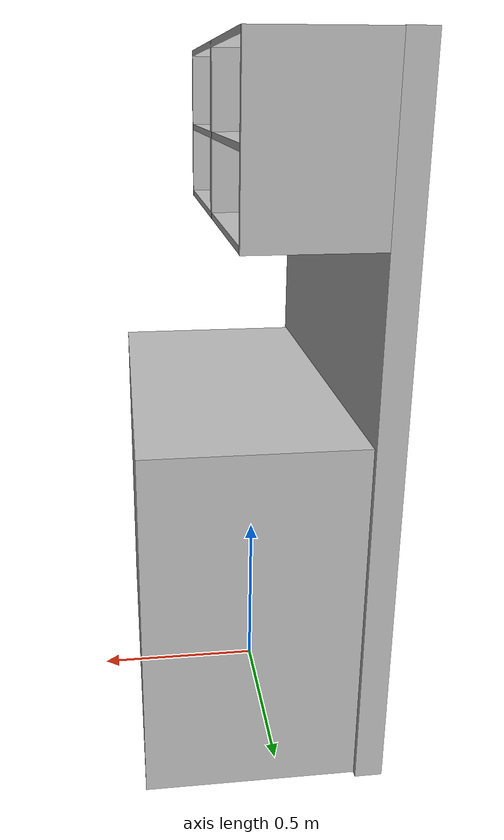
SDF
<?xml version="1.0"?>
<sdf version="1.6">
  <model name="rgo2017/kitchen_sink">
    <link name="1_link">
      <collision name="1_col">
        <geometry>
          <box>
            <size>0.6 1.169 1.02</size>
          </box>
        </geometry>
      </collision>
      <visual name="1_vis">
        <geometry>
          <box>
            <size>0.6 1.169 1.02</size>
          </box>
        </geometry>
        <material>
          <ambient>0.75 0.75 0.75 1</ambient>
        </material>
      </visual>
      <pose>0.083 0 0.51 0 0 0</pose>
    </link>
    <link name="2_link">
      <collision name="2_col">
        <geometry>
          <box>
            <size>0.078 1.205 2.002</size>
          </box>
        </geometry>
      </collision>
      <visual name="2_vis">
        <geometry>
          <box>
            <size>0.078 1.205 2.002</size>
          </box>
        </geometry>
        <material>
          <ambient>0.75 0.75 0.75 1</ambient>
        </material>
      </visual>
      <pose>-0.256 0 1.001 0 0 0</pose>
    </link>
    <link name="3_link">
      <collision name="3_col">
        <geometry>
          <box>
            <size>0.35 0.018 0.482</size>
          </box>
        </geometry>
      </collision>
      <visual name="3_vis">
        <geometry>
          <box>
            <size>0.35 0.018 0.482</size>
          </box>
        </geometry>
        <material>
          <ambient>0.75 0.75 0.75 1</ambient>
        </material>
      </visual>
      <pose>-0.042 -0.5935 1.76 0 0 0</pose>
    </link>
    <link name="4_link">
      <collision name="4_col">
        <geometry>
          <box>
            <size>0.35 0.018 0.482</size>
          </box>
        </geometry>
      </collision>
      <visual name="4_vis">
        <geometry>
          <box>
            <size>0.35 0.018 0.482</size>
          </box>
        </geometry>
        <material>
          <ambient>0.75 0.75 0.75 1</ambient>
        </material>
      </visual>
      <pose>-0.042 0.5935 1.76 0 0 0</pose>
    </link>
    <link name="5_link">
      <collision name="5_col">
        <geometry>
          <box>
            <size>0.35 1.169 0.018</size>
          </box>
        </geometry>
      </collision>
      <visual name="5_vis">
        <geometry>
          <box>
            <size>0.35 1.169 0.018</size>
          </box>
        </geometry>
        <material>
          <ambient>0.75 0.75 0.75 1</ambient>
        </material>
      </visual>
      <pose>-0.042 0 1.993 0 0 0</pose>
    </link>
    <link name="6_link">
      <collision name="6_col">
        <geometry>
          <box>
            <size>0.35 1.169 0.018</size>
          </box>
        </geometry>
      </collision>
      <visual name="6_vis">
        <geometry>
          <box>
            <size>0.35 1.169 0.018</size>
          </box>
        </geometry>
        <material>
          <ambient>0.75 0.75 0.75 1</ambient>
        </material>
      </visual>
      <pose>-0.042 0 1.529 0 0 0</pose>
    </link>
    <link name="7_link">
      <collision name="7_col">
        <geometry>
          <box>
            <size>0.35 1.169 0.018</size>
          </box>
        </geometry>
      </collision>
      <visual name="7_vis">
        <geometry>
          <box>
            <size>0.35 1.169 0.018</size>
          </box>
        </geometry>
        <material>
          <ambient>0.75 0.75 0.75 1</ambient>
        </material>
      </visual>
      <pose>-0.042 0 1.754 0 0 0</pose>
    </link>
    <link name="8_link">
      <collision name="8_col">
        <geometry>
          <box>
            <size>0.35 0.036 0.482</size>
          </box>
        </geometry>
      </collision>
      <visual name="8_vis">
        <geometry>
          <box>
            <size>0.35 0.036 0.482</size>
          </box>
        </geometry>
        <material>
          <ambient>0.75 0.75 0.75 1</ambient>
        </material>
      </visual>
      <pose>-0.042 0 1.76 0 0 0</pose>
    </link>
    <link name="in_front_of">
      <virtual_volume name="in_front_of_vv">
        <geometry>
          <box>
            <size>0.2 1.005 0.01</size>
          </box>
        </geometry>
        <pose>1.3 0.0 0.005 0 0 0</pose>
      </virtual_volume>
    </link>
    <link name="on_top_of">
      <virtual_volume name="on_top_of_vv">
        <geometry>
          <box>
            <size>0.53 1.14 0.3</size>
          </box>
        </geometry>
        <pose>0.078 0.0 1.19 0 0 0</pose>
      </virtual_volume>
    </link>
    <static>true</static>
  </model>
</sdf>
